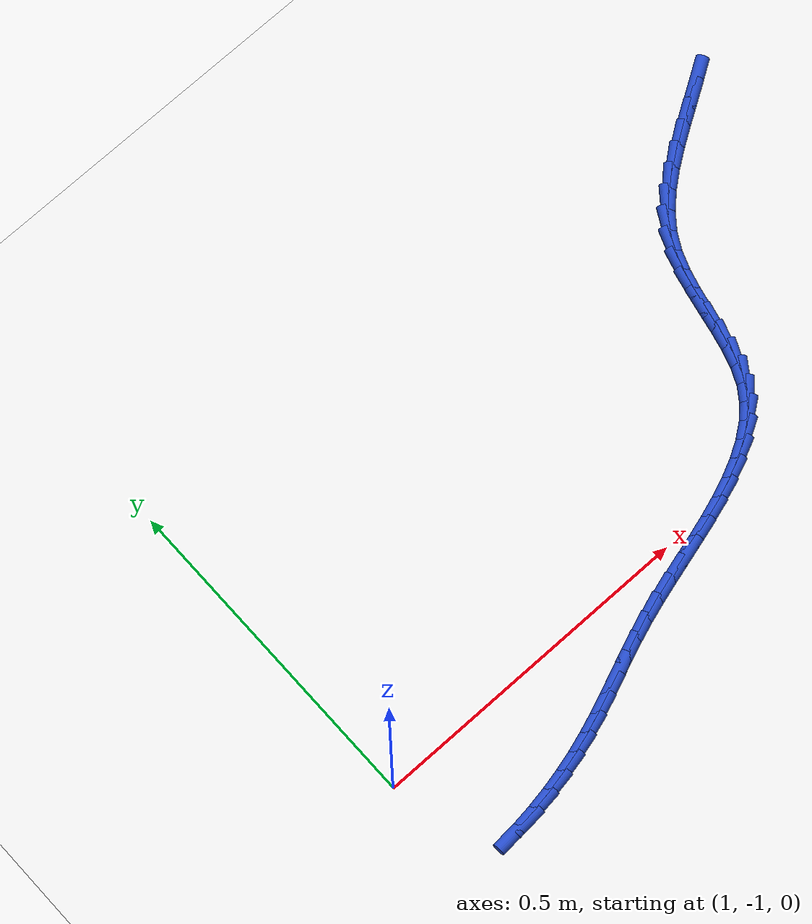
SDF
<sdf version="1.6">
 <world name="default">
  <model name="ground_plane">
   <static>1</static>
   <link name="link">
    <collision name="collision">
     <geometry><plane><normal>0 0 1</normal><size>100 100</size></plane></geometry>
     <surface><friction><ode><mu>100</mu><mu2>50</mu2></ode></friction></surface>
    </collision>
    <visual name="visual">
     <cast_shadows>0</cast_shadows>
     <geometry><plane><normal>0 0 1</normal><size>100 100</size></plane></geometry>
     <material>
      <script><uri>file://media/materials/scripts/gazebo.material</uri><name>Gazebo/WhiteGlow</name></script>
     </material>
    </visual>
   </link>
  </model>
  <model name="line">
   <link name="link_134">
    <pose>1.9872194832727563 -0.5319924825370212 0.01 0 1.57 0.565968468397825</pose>
    <collision name="collision">
     <geometry><cylinder><radius>0.01</radius><length>0.08</length></cylinder></geometry>
    </collision>
    <visual name="visual">
     <material>
      <script><name>Gazebo/Blue</name><uri>file://media/materials/scripts/gazebo.material</uri></script>
     </material>
     <geometry><cylinder><radius>0.01</radius><length>0.08</length></cylinder></geometry>
    </visual>
   </link>
   <link name="link_135">
    <pose>1.959608753490234 -0.5495334502879254 0.01 0 1.57 0.5581452455995148</pose>
    <collision name="collision">
     <geometry><cylinder><radius>0.01</radius><length>0.08</length></cylinder></geometry>
    </collision>
    <visual name="visual">
     <material>
      <script><name>Gazebo/Blue</name><uri>file://media/materials/scripts/gazebo.material</uri></script>
     </material>
     <geometry><cylinder><radius>0.01</radius><length>0.08</length></cylinder></geometry>
    </visual>
   </link>
   <link name="link_136">
    <pose>1.9313130683870692 -0.5672003914970128 0.01 0 1.57 0.5742610697753444</pose>
    <collision name="collision">
     <geometry><cylinder><radius>0.01</radius><length>0.08</length></cylinder></geometry>
    </collision>
    <visual name="visual">
     <material>
      <script><name>Gazebo/Blue</name><uri>file://media/materials/scripts/gazebo.material</uri></script>
     </material>
     <geometry><cylinder><radius>0.01</radius><length>0.08</length></cylinder></geometry>
    </visual>
   </link>
   <link name="link_137">
    <pose>1.903187574866327 -0.5853974942018813 0.01 0 1.57 0.6147105088906502</pose>
    <collision name="collision">
     <geometry><cylinder><radius>0.01</radius><length>0.08</length></cylinder></geometry>
    </collision>
    <visual name="visual">
     <material>
      <script><name>Gazebo/Blue</name><uri>file://media/materials/scripts/gazebo.material</uri></script>
     </material>
     <geometry><cylinder><radius>0.01</radius><length>0.08</length></cylinder></geometry>
    </visual>
   </link>
   <link name="link_138">
    <pose>1.8760874198310762 -0.6045289464401289 0.01 0 1.57 0.6818149776621155</pose>
    <collision name="collision">
     <geometry><cylinder><radius>0.01</radius><length>0.08</length></cylinder></geometry>
    </collision>
    <visual name="visual">
     <material>
      <script><name>Gazebo/Blue</name><uri>file://media/materials/scripts/gazebo.material</uri></script>
     </material>
     <geometry><cylinder><radius>0.01</radius><length>0.08</length></cylinder></geometry>
    </visual>
   </link>
   <link name="link_139">
    <pose>1.8508677501843818 -0.6249989362493525 0.01 0 1.57 0.7793279549834916</pose>
    <collision name="collision">
     <geometry><cylinder><radius>0.01</radius><length>0.08</length></cylinder></geometry>
    </collision>
    <visual name="visual">
     <material>
      <script><name>Gazebo/Blue</name><uri>file://media/materials/scripts/gazebo.material</uri></script>
     </material>
     <geometry><cylinder><radius>0.01</radius><length>0.08</length></cylinder></geometry>
    </visual>
   </link>
   <link name="link_140">
    <pose>1.8283837128293117 -0.6472116516671507 0.01 0 1.57 0.9111133116675503</pose>
    <collision name="collision">
     <geometry><cylinder><radius>0.01</radius><length>0.08</length></cylinder></geometry>
    </collision>
    <visual name="visual">
     <material>
      <script><name>Gazebo/Blue</name><uri>file://media/materials/scripts/gazebo.material</uri></script>
     </material>
     <geometry><cylinder><radius>0.01</radius><length>0.08</length></cylinder></geometry>
    </visual>
   </link>
   <link name="link_141">
    <pose>1.8094904546689339 -0.6715712807311198 0.01 0 1.57 1.0722666635016898</pose>
    <collision name="collision">
     <geometry><cylinder><radius>0.01</radius><length>0.08</length></cylinder></geometry>
    </collision>
    <visual name="visual">
     <material>
      <script><name>Gazebo/Blue</name><uri>file://media/materials/scripts/gazebo.material</uri></script>
     </material>
     <geometry><cylinder><radius>0.01</radius><length>0.08</length></cylinder></geometry>
    </visual>
   </link>
   <link name="link_142">
    <pose>1.7948893386525857 -0.6983920993908412 0.01 0 1.57 1.2118066688519966</pose>
    <collision name="collision">
     <geometry><cylinder><radius>0.01</radius><length>0.08</length></cylinder></geometry>
    </collision>
    <visual name="visual">
     <material>
      <script><name>Gazebo/Blue</name><uri>file://media/materials/scripts/gazebo.material</uri></script>
     </material>
     <geometry><cylinder><radius>0.01</radius><length>0.08</length></cylinder></geometry>
    </visual>
   </link>
   <link name="link_143">
    <pose>1.7840529311523032 -0.7272699493032744 0.01 0 1.57 1.3059159859397906</pose>
    <collision name="collision">
     <geometry><cylinder><radius>0.01</radius><length>0.08</length></cylinder></geometry>
    </collision>
    <visual name="visual">
     <material>
      <script><name>Gazebo/Blue</name><uri>file://media/materials/scripts/gazebo.material</uri></script>
     </material>
     <geometry><cylinder><radius>0.01</radius><length>0.08</length></cylinder></geometry>
    </visual>
   </link>
   <link name="link_144">
    <pose>1.7758647643692584 -0.7574562844897953 0.01 0 1.57 1.3574626249435051</pose>
    <collision name="collision">
     <geometry><cylinder><radius>0.01</radius><length>0.08</length></cylinder></geometry>
    </collision>
    <visual name="visual">
     <material>
      <script><name>Gazebo/Blue</name><uri>file://media/materials/scripts/gazebo.material</uri></script>
     </material>
     <geometry><cylinder><radius>0.01</radius><length>0.08</length></cylinder></geometry>
    </visual>
   </link>
   <link name="link_145">
    <pose>1.7692046655294569 -0.7882003928026458 0.01 0 1.57 1.368936563118797</pose>
    <collision name="collision">
     <geometry><cylinder><radius>0.01</radius><length>0.08</length></cylinder></geometry>
    </collision>
    <visual name="visual">
     <material>
      <script><name>Gazebo/Blue</name><uri>file://media/materials/scripts/gazebo.material</uri></script>
     </material>
     <geometry><cylinder><radius>0.01</radius><length>0.08</length></cylinder></geometry>
    </visual>
   </link>
   <link name="link_146">
    <pose>1.7629524618589039 -0.8187515620940703 0.01 0 1.57 1.3397694617809977</pose>
    <collision name="collision">
     <geometry><cylinder><radius>0.01</radius><length>0.08</length></cylinder></geometry>
    </collision>
    <visual name="visual">
     <material>
      <script><name>Gazebo/Blue</name><uri>file://media/materials/scripts/gazebo.material</uri></script>
     </material>
     <geometry><cylinder><radius>0.01</radius><length>0.08</length></cylinder></geometry>
    </visual>
   </link>
   <link name="link_147">
    <pose>1.7559879805836038 -0.8483590802163127 0.01 0 1.57 1.265495759510763</pose>
    <collision name="collision">
     <geometry><cylinder><radius>0.01</radius><length>0.08</length></cylinder></geometry>
    </collision>
    <visual name="visual">
     <material>
      <script><name>Gazebo/Blue</name><uri>file://media/materials/scripts/gazebo.material</uri></script>
     </material>
     <geometry><cylinder><radius>0.01</radius><length>0.08</length></cylinder></geometry>
    </visual>
   </link>
   <link name="link_148">
    <pose>1.7471910489295615 -0.8762722350216172 0.01 0 1.57 1.1385485770654649</pose>
    <collision name="collision">
     <geometry><cylinder><radius>0.01</radius><length>0.08</length></cylinder></geometry>
    </collision>
    <visual name="visual">
     <material>
      <script><name>Gazebo/Blue</name><uri>file://media/materials/scripts/gazebo.material</uri></script>
     </material>
     <geometry><cylinder><radius>0.01</radius><length>0.08</length></cylinder></geometry>
    </visual>
   </link>
   <link name="link_149">
    <pose>1.7354414941227823 -0.9017403143622261 0.01 0 1.57 0.9634977607624375</pose>
    <collision name="collision">
     <geometry><cylinder><radius>0.01</radius><length>0.08</length></cylinder></geometry>
    </collision>
    <visual name="visual">
     <material>
      <script><name>Gazebo/Blue</name><uri>file://media/materials/scripts/gazebo.material</uri></script>
     </material>
     <geometry><cylinder><radius>0.01</radius><length>0.08</length></cylinder></geometry>
    </visual>
   </link>
   <link name="link_150">
    <pose>1.7198519994875172 -0.9241742961636086 0.01 0 1.57 0.7925644176165297</pose>
    <collision name="collision">
     <geometry><cylinder><radius>0.01</radius><length>0.08</length></cylinder></geometry>
    </collision>
    <visual name="visual">
     <material>
      <script><name>Gazebo/Blue</name><uri>file://media/materials/scripts/gazebo.material</uri></script>
     </material>
     <geometry><cylinder><radius>0.01</radius><length>0.08</length></cylinder></geometry>
    </visual>
   </link>
   <link name="link_151">
    <pose>1.7005881341242288 -0.9437162587155143 0.01 0 1.57 0.6475365066629438</pose>
    <collision name="collision">
     <geometry><cylinder><radius>0.01</radius><length>0.08</length></cylinder></geometry>
    </collision>
    <visual name="visual">
     <material>
      <script><name>Gazebo/Blue</name><uri>file://media/materials/scripts/gazebo.material</uri></script>
     </material>
     <geometry><cylinder><radius>0.01</radius><length>0.08</length></cylinder></geometry>
    </visual>
   </link>
   <link name="link_152">
    <pose>1.678112912090873 -0.9607148194420322 0.01 0 1.57 0.5307340886960262</pose>
    <collision name="collision">
     <geometry><cylinder><radius>0.01</radius><length>0.08</length></cylinder></geometry>
    </collision>
    <visual name="visual">
     <material>
      <script><name>Gazebo/Blue</name><uri>file://media/materials/scripts/gazebo.material</uri></script>
     </material>
     <geometry><cylinder><radius>0.01</radius><length>0.08</length></cylinder></geometry>
    </visual>
   </link>
   <link name="link_153">
    <pose>1.6528893653915493 -0.9755186082286529 0.01 0 1.57 0.44020889711127986</pose>
    <collision name="collision">
     <geometry><cylinder><radius>0.01</radius><length>0.08</length></cylinder></geometry>
    </collision>
    <visual name="visual">
     <material>
      <script><name>Gazebo/Blue</name><uri>file://media/materials/scripts/gazebo.material</uri></script>
     </material>
     <geometry><cylinder><radius>0.01</radius><length>0.08</length></cylinder></geometry>
    </visual>
   </link>
   <link name="link_154">
    <pose>1.62538052603036 -0.9884762549608678 0.01 0 1.57 0.37247752976132537</pose>
    <collision name="collision">
     <geometry><cylinder><radius>0.01</radius><length>0.08</length></cylinder></geometry>
    </collision>
    <visual name="visual">
     <material>
      <script><name>Gazebo/Blue</name><uri>file://media/materials/scripts/gazebo.material</uri></script>
     </material>
     <geometry><cylinder><radius>0.01</radius><length>0.08</length></cylinder></geometry>
    </visual>
   </link>
   <link name="link_155">
    <pose>1.596049426011406 -0.9999363895241683 0.01 0 1.57 0.3241281905213385</pose>
    <collision name="collision">
     <geometry><cylinder><radius>0.01</radius><length>0.08</length></cylinder></geometry>
    </collision>
    <visual name="visual">
     <material>
      <script><name>Gazebo/Blue</name><uri>file://media/materials/scripts/gazebo.material</uri></script>
     </material>
     <geometry><cylinder><radius>0.01</radius><length>0.08</length></cylinder></geometry>
    </visual>
   </link>
   <link name="link_156">
    <pose>1.5653590973387885 -1.0102476418040462 0.01 0 1.57 0.2924742872469896</pose>
    <collision name="collision">
     <geometry><cylinder><radius>0.01</radius><length>0.08</length></cylinder></geometry>
    </collision>
    <visual name="visual">
     <material>
      <script><name>Gazebo/Blue</name><uri>file://media/materials/scripts/gazebo.material</uri></script>
     </material>
     <geometry><cylinder><radius>0.01</radius><length>0.08</length></cylinder></geometry>
    </visual>
   </link>
   <link name="link_157">
    <pose>1.5337725720166073 -1.0197586416859927 0.01 0 1.57 0.2757249633710256</pose>
    <collision name="collision">
     <geometry><cylinder><radius>0.01</radius><length>0.08</length></cylinder></geometry>
    </collision>
    <visual name="visual">
     <material>
      <script><name>Gazebo/Blue</name><uri>file://media/materials/scripts/gazebo.material</uri></script>
     </material>
     <geometry><cylinder><radius>0.01</radius><length>0.08</length></cylinder></geometry>
    </visual>
   </link>
   <link name="link_158">
    <pose>1.5017528820489658 -1.028818019055499 0.01 0 1.57 0.272986510594088</pose>
    <collision name="collision">
     <geometry><cylinder><radius>0.01</radius><length>0.08</length></cylinder></geometry>
    </collision>
    <visual name="visual">
     <material>
      <script><name>Gazebo/Blue</name><uri>file://media/materials/scripts/gazebo.material</uri></script>
     </material>
     <geometry><cylinder><radius>0.01</radius><length>0.08</length></cylinder></geometry>
    </visual>
   </link>
   <link name="link_159">
    <pose>1.4697630594399638 -1.0377744037980565 0.01 0 1.57 0.28424522110921957</pose>
    <collision name="collision">
     <geometry><cylinder><radius>0.01</radius><length>0.08</length></cylinder></geometry>
    </collision>
    <visual name="visual">
     <material>
      <script><name>Gazebo/Blue</name><uri>file://media/materials/scripts/gazebo.material</uri></script>
     </material>
     <geometry><cylinder><radius>0.01</radius><length>0.08</length></cylinder></geometry>
    </visual>
   </link>
   <link name="link_160">
    <pose>1.438266136193703 -1.0469764257991572 0.01 0 1.57 0.3103822555524771</pose>
    <collision name="collision">
     <geometry><cylinder><radius>0.01</radius><length>0.08</length></cylinder></geometry>
    </collision>
    <visual name="visual">
     <material>
      <script><name>Gazebo/Blue</name><uri>file://media/materials/scripts/gazebo.material</uri></script>
     </material>
     <geometry><cylinder><radius>0.01</radius><length>0.08</length></cylinder></geometry>
    </visual>
   </link>
   <link name="link_161">
    <pose>1.4077248805048523 -1.0567725041011882 0.01 0 1.57 0.34641209483260094</pose>
    <collision name="collision">
     <geometry><cylinder><radius>0.01</radius><length>0.08</length></cylinder></geometry>
    </collision>
    <visual name="visual">
     <material>
      <script><name>Gazebo/Blue</name><uri>file://media/materials/scripts/gazebo.material</uri></script>
     </material>
     <geometry><cylinder><radius>0.01</radius><length>0.08</length></cylinder></geometry>
    </visual>
   </link>
   <link name="link_162">
    <pose>1.3784071335762673 -1.0673552672139368 0.01 0 1.57 0.3739260517694995</pose>
    <collision name="collision">
     <geometry><cylinder><radius>0.01</radius><length>0.08</length></cylinder></geometry>
    </collision>
    <visual name="visual">
     <material>
      <script><name>Gazebo/Blue</name><uri>file://media/materials/scripts/gazebo.material</uri></script>
     </material>
     <geometry><cylinder><radius>0.01</radius><length>0.08</length></cylinder></geometry>
    </visual>
   </link>
   <link name="link_163">
    <pose>1.3500408234281567 -1.078485831512818 0.01 0 1.57 0.3883490575956145</pose>
    <collision name="collision">
     <geometry><cylinder><radius>0.01</radius><length>0.08</length></cylinder></geometry>
    </collision>
    <visual name="visual">
     <material>
      <script><name>Gazebo/Blue</name><uri>file://media/materials/scripts/gazebo.material</uri></script>
     </material>
     <geometry><cylinder><radius>0.01</radius><length>0.08</length></cylinder></geometry>
    </visual>
   </link>
   <link name="link_164">
    <pose>1.3222611702608893 -1.0898512189623388 0.01 0 1.57 0.3887413075984778</pose>
    <collision name="collision">
     <geometry><cylinder><radius>0.01</radius><length>0.08</length></cylinder></geometry>
    </collision>
    <visual name="visual">
     <material>
      <script><name>Gazebo/Blue</name><uri>file://media/materials/scripts/gazebo.material</uri></script>
     </material>
     <geometry><cylinder><radius>0.01</radius><length>0.08</length></cylinder></geometry>
    </visual>
   </link>
   <link name="link_165">
    <pose>1.294703394274835 -1.1011384515270055 0.01 0 1.57 0.37476168479647537</pose>
    <collision name="collision">
     <geometry><cylinder><radius>0.01</radius><length>0.08</length></cylinder></geometry>
    </collision>
    <visual name="visual">
     <material>
      <script><name>Gazebo/Blue</name><uri>file://media/materials/scripts/gazebo.material</uri></script>
     </material>
     <geometry><cylinder><radius>0.01</radius><length>0.08</length></cylinder></geometry>
    </visual>
   </link>
   <link name="link_166">
    <pose>1.2670027156703632 -1.1120345511713245 0.01 0 1.57 0.3467156066352705</pose>
    <collision name="collision">
     <geometry><cylinder><radius>0.01</radius><length>0.08</length></cylinder></geometry>
    </collision>
    <visual name="visual">
     <material>
      <script><name>Gazebo/Blue</name><uri>file://media/materials/scripts/gazebo.material</uri></script>
     </material>
     <geometry><cylinder><radius>0.01</radius><length>0.08</length></cylinder></geometry>
    </visual>
   </link>
   <link name="link_167">
    <pose>1.238794354647845 -1.1222265398598021 0.01 0 1.57 0.30634826839918333</pose>
    <collision name="collision">
     <geometry><cylinder><radius>0.01</radius><length>0.08</length></cylinder></geometry>
    </collision>
    <visual name="visual">
     <material>
      <script><name>Gazebo/Blue</name><uri>file://media/materials/scripts/gazebo.material</uri></script>
     </material>
     <geometry><cylinder><radius>0.01</radius><length>0.08</length></cylinder></geometry>
    </visual>
   </link>
   <link name="link_168">
    <pose>1.2097462683258096 -1.1314146167909134 0.01 0 1.57 0.2618641249946808</pose>
    <collision name="collision">
     <geometry><cylinder><radius>0.01</radius><length>0.08</length></cylinder></geometry>
    </collision>
    <visual name="visual">
     <material>
      <script><name>Gazebo/Blue</name><uri>file://media/materials/scripts/gazebo.material</uri></script>
     </material>
     <geometry><cylinder><radius>0.01</radius><length>0.08</length></cylinder></geometry>
    </visual>
   </link>
   <link name="link_169">
    <pose>1.1798472281439942 -1.1394281150464884 0.01 0 1.57 0.21698441649729167</pose>
    <collision name="collision">
     <geometry><cylinder><radius>0.01</radius><length>0.08</length></cylinder></geometry>
    </collision>
    <visual name="visual">
     <material>
      <script><name>Gazebo/Blue</name><uri>file://media/materials/scripts/gazebo.material</uri></script>
     </material>
     <geometry><cylinder><radius>0.01</radius><length>0.08</length></cylinder></geometry>
    </visual>
   </link>
   <link name="link_170">
    <pose>1.149267743030693 -1.1461695205138813 0.01 0 1.57 0.1711333381518567</pose>
    <collision name="collision">
     <geometry><cylinder><radius>0.01</radius><length>0.08</length></cylinder></geometry>
    </collision>
    <visual name="visual">
     <material>
      <script><name>Gazebo/Blue</name><uri>file://media/materials/scripts/gazebo.material</uri></script>
     </material>
     <geometry><cylinder><radius>0.01</radius><length>0.08</length></cylinder></geometry>
    </visual>
   </link>
   <link name="link_171">
    <pose>1.1181803951090097 -1.1515421535808992 0.01 0 1.57 0.12370796055968905</pose>
    <collision name="collision">
     <geometry><cylinder><radius>0.01</radius><length>0.08</length></cylinder></geometry>
    </collision>
    <visual name="visual">
     <material>
      <script><name>Gazebo/Blue</name><uri>file://media/materials/scripts/gazebo.material</uri></script>
     </material>
     <geometry><cylinder><radius>0.01</radius><length>0.08</length></cylinder></geometry>
    </visual>
   </link>
   <link name="link_172">
    <pose>1.0867577665020463 -1.1554493346353494 0.01 0 1.57 0.07410892837834976</pose>
    <collision name="collision">
     <geometry><cylinder><radius>0.01</radius><length>0.08</length></cylinder></geometry>
    </collision>
    <visual name="visual">
     <material>
      <script><name>Gazebo/Blue</name><uri>file://media/materials/scripts/gazebo.material</uri></script>
     </material>
     <geometry><cylinder><radius>0.01</radius><length>0.08</length></cylinder></geometry>
    </visual>
   </link>
  </model>
 </world>
</sdf>
